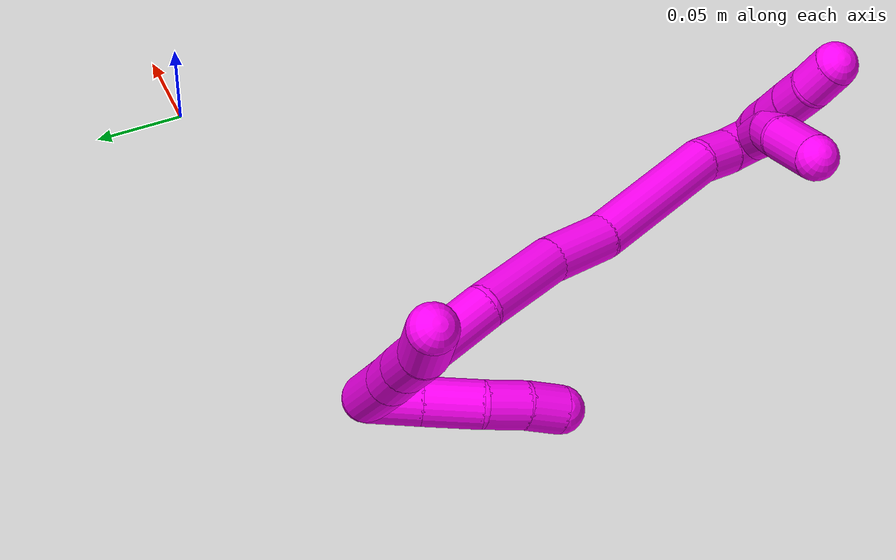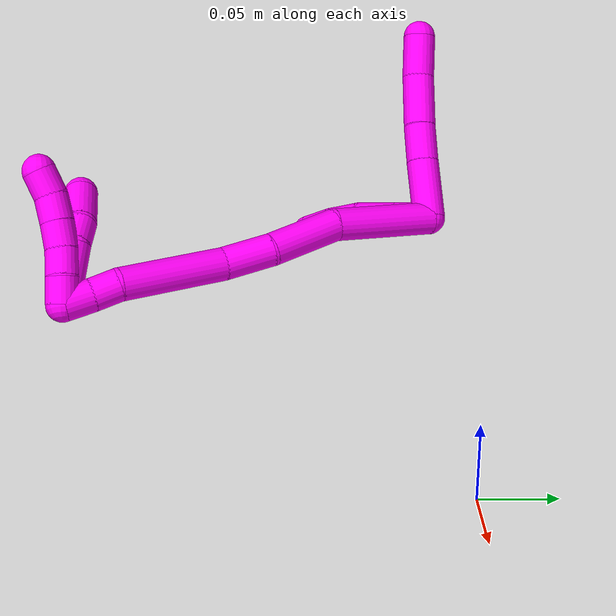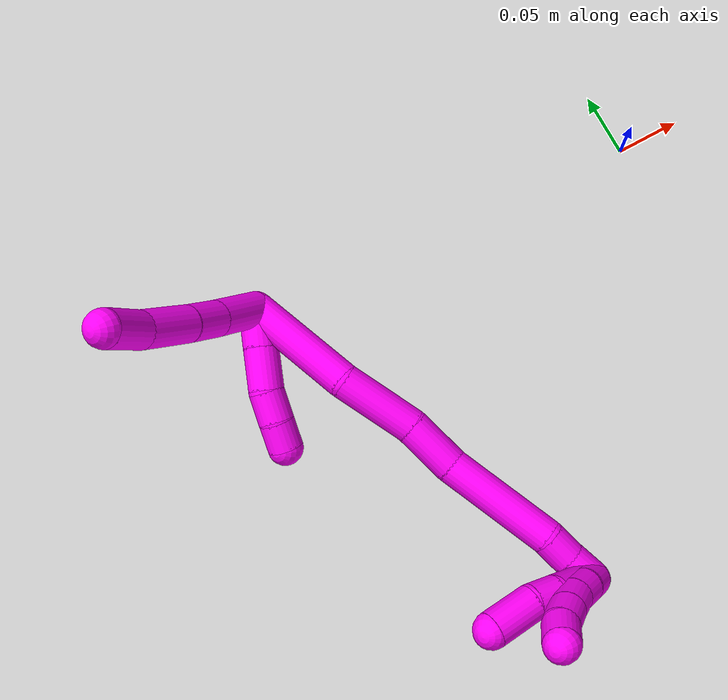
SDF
<sdf version="1.7">
 <world name="default">
  <model name="10">
   <static>0</static>
   <link name="10">
    <collision name="collision-cylinder-e_1_2_8">
     <pose>-0.00017 -0.000464 -0.022891 3.12134 -0.007409 -0.701391</pose>
     <geometry><cylinder><radius>0.0125</radius><length>0.045792</length></cylinder></geometry>
     <surface>
      <friction><ode><mu>1.16</mu><mu2>1.16</mu2><slip1>0</slip1><slip2>0</slip2></ode></friction>
      <contact><ode><kp>1e+06</kp><kd>1</kd><max_vel>0</max_vel><min_depth>0.001</min_depth></ode></contact>
     </surface>
    </collision>
    <visual name="visual-cylinder-e_1_2_8">
     <pose>-0.00017 -0.000464 -0.022891 3.12134 -0.007409 -0.701391</pose>
     <geometry><cylinder><radius>0.0125</radius><length>0.045792</length></cylinder></geometry>
     <material><ambient>1 0 0.964706 1</ambient></material>
    </visual>
    <collision name="collision-cylinder-e_2_8_9">
     <pose>-0.000908 -0.001465 -0.060499 3.10509 -0.03859 -1.62633</pose>
     <geometry><cylinder><radius>0.0125</radius><length>0.029476</length></cylinder></geometry>
     <surface>
      <friction><ode><mu>1.16</mu><mu2>1.16</mu2><slip1>0</slip1><slip2>0</slip2></ode></friction>
      <contact><ode><kp>1e+06</kp><kd>1</kd><max_vel>0</max_vel><min_depth>0.001</min_depth></ode></contact>
     </surface>
    </collision>
    <visual name="visual-cylinder-e_2_8_9">
     <pose>-0.000908 -0.001465 -0.060499 3.10509 -0.03859 -1.62633</pose>
     <geometry><cylinder><radius>0.0125</radius><length>0.029476</length></cylinder></geometry>
     <material><ambient>1 0 0.964706 1</ambient></material>
    </visual>
    <collision name="collision-cylinder-e_3_9_10">
     <pose>-0.003075 -0.001477 -0.095797 -3.11607 -0.077506 2.50565</pose>
     <geometry><cylinder><radius>0.0125</radius><length>0.041299</length></cylinder></geometry>
     <surface>
      <friction><ode><mu>1.16</mu><mu2>1.16</mu2><slip1>0</slip1><slip2>0</slip2></ode></friction>
      <contact><ode><kp>1e+06</kp><kd>1</kd><max_vel>0</max_vel><min_depth>0.001</min_depth></ode></contact>
     </surface>
    </collision>
    <visual name="visual-cylinder-e_3_9_10">
     <pose>-0.003075 -0.001477 -0.095797 -3.11607 -0.077506 2.50565</pose>
     <geometry><cylinder><radius>0.0125</radius><length>0.041299</length></cylinder></geometry>
     <material><ambient>1 0 0.964706 1</ambient></material>
    </visual>
    <collision name="collision-cylinder-e_4_10_6">
     <pose>-0.007487 -0.003242 -0.132696 3.00214 -0.169084 -1.76305</pose>
     <geometry><cylinder><radius>0.0125</radius><length>0.033432</length></cylinder></geometry>
     <surface>
      <friction><ode><mu>1.16</mu><mu2>1.16</mu2><slip1>0</slip1><slip2>0</slip2></ode></friction>
      <contact><ode><kp>1e+06</kp><kd>1</kd><max_vel>0</max_vel><min_depth>0.001</min_depth></ode></contact>
     </surface>
    </collision>
    <visual name="visual-cylinder-e_4_10_6">
     <pose>-0.007487 -0.003242 -0.132696 3.00214 -0.169084 -1.76305</pose>
     <geometry><cylinder><radius>0.0125</radius><length>0.033432</length></cylinder></geometry>
     <material><ambient>1 0 0.964706 1</ambient></material>
    </visual>
    <collision name="collision-cylinder-e_1_2_11">
     <pose>0.013407 0.000556 -0.002393 -2.91313 1.38955 -2.86798</pose>
     <geometry><cylinder><radius>0.0125</radius><length>0.027261</length></cylinder></geometry>
     <surface>
      <friction><ode><mu>1.16</mu><mu2>1.16</mu2><slip1>0</slip1><slip2>0</slip2></ode></friction>
      <contact><ode><kp>1e+06</kp><kd>1</kd><max_vel>0</max_vel><min_depth>0.001</min_depth></ode></contact>
     </surface>
    </collision>
    <visual name="visual-cylinder-e_1_2_11">
     <pose>0.013407 0.000556 -0.002393 -2.91313 1.38955 -2.86798</pose>
     <geometry><cylinder><radius>0.0125</radius><length>0.027261</length></cylinder></geometry>
     <material><ambient>1 0 0.964706 1</ambient></material>
    </visual>
    <collision name="collision-cylinder-e_2_11_12">
     <pose>0.041781 0.001591 -0.007491 -2.96676 1.38931 -2.93199</pose>
     <geometry><cylinder><radius>0.0125</radius><length>0.030432</length></cylinder></geometry>
     <surface>
      <friction><ode><mu>1.16</mu><mu2>1.16</mu2><slip1>0</slip1><slip2>0</slip2></ode></friction>
      <contact><ode><kp>1e+06</kp><kd>1</kd><max_vel>0</max_vel><min_depth>0.001</min_depth></ode></contact>
     </surface>
    </collision>
    <visual name="visual-cylinder-e_2_11_12">
     <pose>0.041781 0.001591 -0.007491 -2.96676 1.38931 -2.93199</pose>
     <geometry><cylinder><radius>0.0125</radius><length>0.030432</length></cylinder></geometry>
     <material><ambient>1 0 0.964706 1</ambient></material>
    </visual>
    <collision name="collision-cylinder-e_3_12_13">
     <pose>0.06781 0.00158 -0.009776 0.862163 1.51267 0.818847</pose>
     <geometry><cylinder><radius>0.0125</radius><length>0.022165</length></cylinder></geometry>
     <surface>
      <friction><ode><mu>1.16</mu><mu2>1.16</mu2><slip1>0</slip1><slip2>0</slip2></ode></friction>
      <contact><ode><kp>1e+06</kp><kd>1</kd><max_vel>0</max_vel><min_depth>0.001</min_depth></ode></contact>
     </surface>
    </collision>
    <visual name="visual-cylinder-e_3_12_13">
     <pose>0.06781 0.00158 -0.009776 0.862163 1.51267 0.818847</pose>
     <geometry><cylinder><radius>0.0125</radius><length>0.022165</length></cylinder></geometry>
     <material><ambient>1 0 0.964706 1</ambient></material>
    </visual>
    <collision name="collision-cylinder-e_4_13_5">
     <pose>0.088821 0.001452 -0.007822 -0.23111 1.41358 -0.197597</pose>
     <geometry><cylinder><radius>0.0125</radius><length>0.020142</length></cylinder></geometry>
     <surface>
      <friction><ode><mu>1.16</mu><mu2>1.16</mu2><slip1>0</slip1><slip2>0</slip2></ode></friction>
      <contact><ode><kp>1e+06</kp><kd>1</kd><max_vel>0</max_vel><min_depth>0.001</min_depth></ode></contact>
     </surface>
    </collision>
    <visual name="visual-cylinder-e_4_13_5">
     <pose>0.088821 0.001452 -0.007822 -0.23111 1.41358 -0.197597</pose>
     <geometry><cylinder><radius>0.0125</radius><length>0.020142</length></cylinder></geometry>
     <material><ambient>1 0 0.964706 1</ambient></material>
    </visual>
    <collision name="collision-cylinder-e_1_2_14">
     <pose>0.031336 -0.025513 0.003611 1.4302 0.88262 0.77859</pose>
     <geometry><cylinder><radius>0.0125</radius><length>0.08114</length></cylinder></geometry>
     <surface>
      <friction><ode><mu>1.16</mu><mu2>1.16</mu2><slip1>0</slip1><slip2>0</slip2></ode></friction>
      <contact><ode><kp>1e+06</kp><kd>1</kd><max_vel>0</max_vel><min_depth>0.001</min_depth></ode></contact>
     </surface>
    </collision>
    <visual name="visual-cylinder-e_1_2_14">
     <pose>0.031336 -0.025513 0.003611 1.4302 0.88262 0.77859</pose>
     <geometry><cylinder><radius>0.0125</radius><length>0.08114</length></cylinder></geometry>
     <material><ambient>1 0 0.964706 1</ambient></material>
    </visual>
    <collision name="collision-cylinder-e_2_14_15">
     <pose>0.083733 -0.066629 0.017168 1.0033 0.849941 0.486565</pose>
     <geometry><cylinder><radius>0.0125</radius><length>0.056069</length></cylinder></geometry>
     <surface>
      <friction><ode><mu>1.16</mu><mu2>1.16</mu2><slip1>0</slip1><slip2>0</slip2></ode></friction>
      <contact><ode><kp>1e+06</kp><kd>1</kd><max_vel>0</max_vel><min_depth>0.001</min_depth></ode></contact>
     </surface>
    </collision>
    <visual name="visual-cylinder-e_2_14_15">
     <pose>0.083733 -0.066629 0.017168 1.0033 0.849941 0.486565</pose>
     <geometry><cylinder><radius>0.0125</radius><length>0.056069</length></cylinder></geometry>
     <material><ambient>1 0 0.964706 1</ambient></material>
    </visual>
    <collision name="collision-cylinder-e_3_15_16">
     <pose>0.121178 -0.090729 0.031823 1.0647 1.03559 0.647509</pose>
     <geometry><cylinder><radius>0.0125</radius><length>0.038096</length></cylinder></geometry>
     <surface>
      <friction><ode><mu>1.16</mu><mu2>1.16</mu2><slip1>0</slip1><slip2>0</slip2></ode></friction>
      <contact><ode><kp>1e+06</kp><kd>1</kd><max_vel>0</max_vel><min_depth>0.001</min_depth></ode></contact>
     </surface>
    </collision>
    <visual name="visual-cylinder-e_3_15_16">
     <pose>0.121178 -0.090729 0.031823 1.0647 1.03559 0.647509</pose>
     <geometry><cylinder><radius>0.0125</radius><length>0.038096</length></cylinder></geometry>
     <material><ambient>1 0 0.964706 1</ambient></material>
    </visual>
    <collision name="collision-cylinder-e_4_16_17">
     <pose>0.168847 -0.12422 0.044628 1.25757 0.872264 0.653589</pose>
     <geometry><cylinder><radius>0.0125</radius><length>0.081705</length></cylinder></geometry>
     <surface>
      <friction><ode><mu>1.16</mu><mu2>1.16</mu2><slip1>0</slip1><slip2>0</slip2></ode></friction>
      <contact><ode><kp>1e+06</kp><kd>1</kd><max_vel>0</max_vel><min_depth>0.001</min_depth></ode></contact>
     </surface>
    </collision>
    <visual name="visual-cylinder-e_4_16_17">
     <pose>0.168847 -0.12422 0.044628 1.25757 0.872264 0.653589</pose>
     <geometry><cylinder><radius>0.0125</radius><length>0.081705</length></cylinder></geometry>
     <material><ambient>1 0 0.964706 1</ambient></material>
    </visual>
    <collision name="collision-cylinder-e_5_17_18">
     <pose>0.209049 -0.153285 0.056039 0.887279 1.03859 0.530512</pose>
     <geometry><cylinder><radius>0.0125</radius><length>0.020696</length></cylinder></geometry>
     <surface>
      <friction><ode><mu>1.16</mu><mu2>1.16</mu2><slip1>0</slip1><slip2>0</slip2></ode></friction>
      <contact><ode><kp>1e+06</kp><kd>1</kd><max_vel>0</max_vel><min_depth>0.001</min_depth></ode></contact>
     </surface>
    </collision>
    <visual name="visual-cylinder-e_5_17_18">
     <pose>0.209049 -0.153285 0.056039 0.887279 1.03859 0.530512</pose>
     <geometry><cylinder><radius>0.0125</radius><length>0.020696</length></cylinder></geometry>
     <material><ambient>1 0 0.964706 1</ambient></material>
    </visual>
    <collision name="collision-cylinder-e_6_18_1">
     <pose>0.227193 -0.162692 0.062618 1.02193 0.975151 0.577936</pose>
     <geometry><cylinder><radius>0.0125</radius><length>0.022294</length></cylinder></geometry>
     <surface>
      <friction><ode><mu>1.16</mu><mu2>1.16</mu2><slip1>0</slip1><slip2>0</slip2></ode></friction>
      <contact><ode><kp>1e+06</kp><kd>1</kd><max_vel>0</max_vel><min_depth>0.001</min_depth></ode></contact>
     </surface>
    </collision>
    <visual name="visual-cylinder-e_6_18_1">
     <pose>0.227193 -0.162692 0.062618 1.02193 0.975151 0.577936</pose>
     <geometry><cylinder><radius>0.0125</radius><length>0.022294</length></cylinder></geometry>
     <material><ambient>1 0 0.964706 1</ambient></material>
    </visual>
    <collision name="collision-cylinder-e_1_1_19">
     <pose>0.232713 -0.164208 0.043389 -2.97341 -0.161089 1.52754</pose>
     <geometry><cylinder><radius>0.0125</radius><length>0.046226</length></cylinder></geometry>
     <surface>
      <friction><ode><mu>1.16</mu><mu2>1.16</mu2><slip1>0</slip1><slip2>0</slip2></ode></friction>
      <contact><ode><kp>1e+06</kp><kd>1</kd><max_vel>0</max_vel><min_depth>0.001</min_depth></ode></contact>
     </surface>
    </collision>
    <visual name="visual-cylinder-e_1_1_19">
     <pose>0.232713 -0.164208 0.043389 -2.97341 -0.161089 1.52754</pose>
     <geometry><cylinder><radius>0.0125</radius><length>0.046226</length></cylinder></geometry>
     <material><ambient>1 0 0.964706 1</ambient></material>
    </visual>
    <collision name="collision-cylinder-e_2_19_20">
     <pose>0.22827 -0.155917 0.01191 -2.67985 -0.073115 0.308707</pose>
     <geometry><cylinder><radius>0.0125</radius><length>0.020131</length></cylinder></geometry>
     <surface>
      <friction><ode><mu>1.16</mu><mu2>1.16</mu2><slip1>0</slip1><slip2>0</slip2></ode></friction>
      <contact><ode><kp>1e+06</kp><kd>1</kd><max_vel>0</max_vel><min_depth>0.001</min_depth></ode></contact>
     </surface>
    </collision>
    <visual name="visual-cylinder-e_2_19_20">
     <pose>0.22827 -0.155917 0.01191 -2.67985 -0.073115 0.308707</pose>
     <geometry><cylinder><radius>0.0125</radius><length>0.020131</length></cylinder></geometry>
     <material><ambient>1 0 0.964706 1</ambient></material>
    </visual>
    <collision name="collision-cylinder-e_3_20_4">
     <pose>0.230422 -0.142877 -0.011263 -2.59825 0.1725 -0.601939</pose>
     <geometry><cylinder><radius>0.0125</radius><length>0.033643</length></cylinder></geometry>
     <surface>
      <friction><ode><mu>1.16</mu><mu2>1.16</mu2><slip1>0</slip1><slip2>0</slip2></ode></friction>
      <contact><ode><kp>1e+06</kp><kd>1</kd><max_vel>0</max_vel><min_depth>0.001</min_depth></ode></contact>
     </surface>
    </collision>
    <visual name="visual-cylinder-e_3_20_4">
     <pose>0.230422 -0.142877 -0.011263 -2.59825 0.1725 -0.601939</pose>
     <geometry><cylinder><radius>0.0125</radius><length>0.033643</length></cylinder></geometry>
     <material><ambient>1 0 0.964706 1</ambient></material>
    </visual>
    <collision name="collision-cylinder-e_1_1_21">
     <pose>0.235311 -0.169321 0.056027 3.011 -0.111097 -1.4094</pose>
     <geometry><cylinder><radius>0.0125</radius><length>0.02</length></cylinder></geometry>
     <surface>
      <friction><ode><mu>1.16</mu><mu2>1.16</mu2><slip1>0</slip1><slip2>0</slip2></ode></friction>
      <contact><ode><kp>1e+06</kp><kd>1</kd><max_vel>0</max_vel><min_depth>0.001</min_depth></ode></contact>
     </surface>
    </collision>
    <visual name="visual-cylinder-e_1_1_21">
     <pose>0.235311 -0.169321 0.056027 3.011 -0.111097 -1.4094</pose>
     <geometry><cylinder><radius>0.0125</radius><length>0.02</length></cylinder></geometry>
     <material><ambient>1 0 0.964706 1</ambient></material>
    </visual>
    <collision name="collision-cylinder-e_2_21_22">
     <pose>0.233847 -0.170726 0.03618 3.13052 -0.035589 -2.53836</pose>
     <geometry><cylinder><radius>0.0125</radius><length>0.02</length></cylinder></geometry>
     <surface>
      <friction><ode><mu>1.16</mu><mu2>1.16</mu2><slip1>0</slip1><slip2>0</slip2></ode></friction>
      <contact><ode><kp>1e+06</kp><kd>1</kd><max_vel>0</max_vel><min_depth>0.001</min_depth></ode></contact>
     </surface>
    </collision>
    <visual name="visual-cylinder-e_2_21_22">
     <pose>0.233847 -0.170726 0.03618 3.13052 -0.035589 -2.53836</pose>
     <geometry><cylinder><radius>0.0125</radius><length>0.02</length></cylinder></geometry>
     <material><ambient>1 0 0.964706 1</ambient></material>
    </visual>
    <collision name="collision-cylinder-e_3_22_23">
     <pose>0.234275 -0.172162 0.016307 3.00824 0.078528 1.06358</pose>
     <geometry><cylinder><radius>0.0125</radius><length>0.02</length></cylinder></geometry>
     <surface>
      <friction><ode><mu>1.16</mu><mu2>1.16</mu2><slip1>0</slip1><slip2>0</slip2></ode></friction>
      <contact><ode><kp>1e+06</kp><kd>1</kd><max_vel>0</max_vel><min_depth>0.001</min_depth></ode></contact>
     </surface>
    </collision>
    <visual name="visual-cylinder-e_3_22_23">
     <pose>0.234275 -0.172162 0.016307 3.00824 0.078528 1.06358</pose>
     <geometry><cylinder><radius>0.0125</radius><length>0.02</length></cylinder></geometry>
     <material><ambient>1 0 0.964706 1</ambient></material>
    </visual>
    <collision name="collision-cylinder-e_4_23_24">
     <pose>0.236344 -0.17494 -0.003384 2.99461 0.128763 1.4384</pose>
     <geometry><cylinder><radius>0.0125</radius><length>0.02</length></cylinder></geometry>
     <surface>
      <friction><ode><mu>1.16</mu><mu2>1.16</mu2><slip1>0</slip1><slip2>0</slip2></ode></friction>
      <contact><ode><kp>1e+06</kp><kd>1</kd><max_vel>0</max_vel><min_depth>0.001</min_depth></ode></contact>
     </surface>
    </collision>
    <visual name="visual-cylinder-e_4_23_24">
     <pose>0.236344 -0.17494 -0.003384 2.99461 0.128763 1.4384</pose>
     <geometry><cylinder><radius>0.0125</radius><length>0.02</length></cylinder></geometry>
     <material><ambient>1 0 0.964706 1</ambient></material>
    </visual>
    <collision name="collision-cylinder-e_5_24_3">
     <pose>0.240284 -0.1798 -0.022213 2.78037 0.268789 1.27473</pose>
     <geometry><cylinder><radius>0.0125</radius><length>0.02</length></cylinder></geometry>
     <surface>
      <friction><ode><mu>1.16</mu><mu2>1.16</mu2><slip1>0</slip1><slip2>0</slip2></ode></friction>
      <contact><ode><kp>1e+06</kp><kd>1</kd><max_vel>0</max_vel><min_depth>0.001</min_depth></ode></contact>
     </surface>
    </collision>
    <visual name="visual-cylinder-e_5_24_3">
     <pose>0.240284 -0.1798 -0.022213 2.78037 0.268789 1.27473</pose>
     <geometry><cylinder><radius>0.0125</radius><length>0.02</length></cylinder></geometry>
     <material><ambient>1 0 0.964706 1</ambient></material>
    </visual>
    <collision name="collision-sphere-3">
     <pose>0.242939 -0.183207 -0.031232 0 -0 0</pose>
     <geometry><sphere><radius>0.0125</radius></sphere></geometry>
     <surface>
      <friction><ode><mu>1.16</mu><mu2>1.16</mu2><slip1>0</slip1><slip2>0</slip2></ode></friction>
      <contact><ode><kp>1e+06</kp><kd>1</kd><max_vel>0</max_vel><min_depth>0.001</min_depth></ode></contact>
     </surface>
    </collision>
    <visual name="visual-sphere-3">
     <pose>0.242939 -0.183207 -0.031232 0 -0 0</pose>
     <geometry><sphere><radius>0.0125</radius></sphere></geometry>
     <material><ambient>1 0 0.964706 1</ambient></material>
    </visual>
    <collision name="collision-sphere-24">
     <pose>0.237628 -0.176393 -0.013194 0 -0 0</pose>
     <geometry><sphere><radius>0.0125</radius></sphere></geometry>
     <surface>
      <friction><ode><mu>1.16</mu><mu2>1.16</mu2><slip1>0</slip1><slip2>0</slip2></ode></friction>
      <contact><ode><kp>1e+06</kp><kd>1</kd><max_vel>0</max_vel><min_depth>0.001</min_depth></ode></contact>
     </surface>
    </collision>
    <visual name="visual-sphere-24">
     <pose>0.237628 -0.176393 -0.013194 0 -0 0</pose>
     <geometry><sphere><radius>0.0125</radius></sphere></geometry>
     <material><ambient>1 0 0.964706 1</ambient></material>
    </visual>
    <collision name="collision-sphere-23">
     <pose>0.23506 -0.173488 0.006426 0 -0 0</pose>
     <geometry><sphere><radius>0.0125</radius></sphere></geometry>
     <surface>
      <friction><ode><mu>1.16</mu><mu2>1.16</mu2><slip1>0</slip1><slip2>0</slip2></ode></friction>
      <contact><ode><kp>1e+06</kp><kd>1</kd><max_vel>0</max_vel><min_depth>0.001</min_depth></ode></contact>
     </surface>
    </collision>
    <visual name="visual-sphere-23">
     <pose>0.23506 -0.173488 0.006426 0 -0 0</pose>
     <geometry><sphere><radius>0.0125</radius></sphere></geometry>
     <material><ambient>1 0 0.964706 1</ambient></material>
    </visual>
    <collision name="collision-sphere-22">
     <pose>0.233491 -0.170837 0.026187 0 -0 0</pose>
     <geometry><sphere><radius>0.0125</radius></sphere></geometry>
     <surface>
      <friction><ode><mu>1.16</mu><mu2>1.16</mu2><slip1>0</slip1><slip2>0</slip2></ode></friction>
      <contact><ode><kp>1e+06</kp><kd>1</kd><max_vel>0</max_vel><min_depth>0.001</min_depth></ode></contact>
     </surface>
    </collision>
    <visual name="visual-sphere-22">
     <pose>0.233491 -0.170837 0.026187 0 -0 0</pose>
     <geometry><sphere><radius>0.0125</radius></sphere></geometry>
     <material><ambient>1 0 0.964706 1</ambient></material>
    </visual>
    <collision name="collision-sphere-21">
     <pose>0.234203 -0.170616 0.046174 0 -0 0</pose>
     <geometry><sphere><radius>0.0125</radius></sphere></geometry>
     <surface>
      <friction><ode><mu>1.16</mu><mu2>1.16</mu2><slip1>0</slip1><slip2>0</slip2></ode></friction>
      <contact><ode><kp>1e+06</kp><kd>1</kd><max_vel>0</max_vel><min_depth>0.001</min_depth></ode></contact>
     </surface>
    </collision>
    <visual name="visual-sphere-21">
     <pose>0.234203 -0.170616 0.046174 0 -0 0</pose>
     <geometry><sphere><radius>0.0125</radius></sphere></geometry>
     <material><ambient>1 0 0.964706 1</ambient></material>
    </visual>
    <collision name="collision-sphere-4">
     <pose>0.23331 -0.13431 -0.025448 0 -0 0</pose>
     <geometry><sphere><radius>0.0125</radius></sphere></geometry>
     <surface>
      <friction><ode><mu>1.16</mu><mu2>1.16</mu2><slip1>0</slip1><slip2>0</slip2></ode></friction>
      <contact><ode><kp>1e+06</kp><kd>1</kd><max_vel>0</max_vel><min_depth>0.001</min_depth></ode></contact>
     </surface>
    </collision>
    <visual name="visual-sphere-4">
     <pose>0.23331 -0.13431 -0.025448 0 -0 0</pose>
     <geometry><sphere><radius>0.0125</radius></sphere></geometry>
     <material><ambient>1 0 0.964706 1</ambient></material>
    </visual>
    <collision name="collision-sphere-20">
     <pose>0.227535 -0.151445 0.002922 0 -0 0</pose>
     <geometry><sphere><radius>0.0125</radius></sphere></geometry>
     <surface>
      <friction><ode><mu>1.16</mu><mu2>1.16</mu2><slip1>0</slip1><slip2>0</slip2></ode></friction>
      <contact><ode><kp>1e+06</kp><kd>1</kd><max_vel>0</max_vel><min_depth>0.001</min_depth></ode></contact>
     </surface>
    </collision>
    <visual name="visual-sphere-20">
     <pose>0.227535 -0.151445 0.002922 0 -0 0</pose>
     <geometry><sphere><radius>0.0125</radius></sphere></geometry>
     <material><ambient>1 0 0.964706 1</ambient></material>
    </visual>
    <collision name="collision-sphere-11">
     <pose>0.026814 0.001113 -0.004786 0 -0 0</pose>
     <geometry><sphere><radius>0.0125</radius></sphere></geometry>
     <surface>
      <friction><ode><mu>1.16</mu><mu2>1.16</mu2><slip1>0</slip1><slip2>0</slip2></ode></friction>
      <contact><ode><kp>1e+06</kp><kd>1</kd><max_vel>0</max_vel><min_depth>0.001</min_depth></ode></contact>
     </surface>
    </collision>
    <visual name="visual-sphere-11">
     <pose>0.026814 0.001113 -0.004786 0 -0 0</pose>
     <geometry><sphere><radius>0.0125</radius></sphere></geometry>
     <material><ambient>1 0 0.964706 1</ambient></material>
    </visual>
    <collision name="collision-sphere-6">
     <pose>-0.0103 -0.005532 -0.149014 0 -0 0</pose>
     <geometry><sphere><radius>0.0125</radius></sphere></geometry>
     <surface>
      <friction><ode><mu>1.16</mu><mu2>1.16</mu2><slip1>0</slip1><slip2>0</slip2></ode></friction>
      <contact><ode><kp>1e+06</kp><kd>1</kd><max_vel>0</max_vel><min_depth>0.001</min_depth></ode></contact>
     </surface>
    </collision>
    <visual name="visual-sphere-6">
     <pose>-0.0103 -0.005532 -0.149014 0 -0 0</pose>
     <geometry><sphere><radius>0.0125</radius></sphere></geometry>
     <material><ambient>1 0 0.964706 1</ambient></material>
    </visual>
    <collision name="collision-sphere-10">
     <pose>-0.004674 -0.000952 -0.116378 0 -0 0</pose>
     <geometry><sphere><radius>0.0125</radius></sphere></geometry>
     <surface>
      <friction><ode><mu>1.16</mu><mu2>1.16</mu2><slip1>0</slip1><slip2>0</slip2></ode></friction>
      <contact><ode><kp>1e+06</kp><kd>1</kd><max_vel>0</max_vel><min_depth>0.001</min_depth></ode></contact>
     </surface>
    </collision>
    <visual name="visual-sphere-10">
     <pose>-0.004674 -0.000952 -0.116378 0 -0 0</pose>
     <geometry><sphere><radius>0.0125</radius></sphere></geometry>
     <material><ambient>1 0 0.964706 1</ambient></material>
    </visual>
    <collision name="collision-sphere-9">
     <pose>-0.001476 -0.002002 -0.075216 0 -0 0</pose>
     <geometry><sphere><radius>0.0125</radius></sphere></geometry>
     <surface>
      <friction><ode><mu>1.16</mu><mu2>1.16</mu2><slip1>0</slip1><slip2>0</slip2></ode></friction>
      <contact><ode><kp>1e+06</kp><kd>1</kd><max_vel>0</max_vel><min_depth>0.001</min_depth></ode></contact>
     </surface>
    </collision>
    <visual name="visual-sphere-9">
     <pose>-0.001476 -0.002002 -0.075216 0 -0 0</pose>
     <geometry><sphere><radius>0.0125</radius></sphere></geometry>
     <material><ambient>1 0 0.964706 1</ambient></material>
    </visual>
    <collision name="collision-sphere-2">
     <geometry><sphere><radius>0.0125</radius></sphere></geometry>
     <surface>
      <friction><ode><mu>1.16</mu><mu2>1.16</mu2><slip1>0</slip1><slip2>0</slip2></ode></friction>
      <contact><ode><kp>1e+06</kp><kd>1</kd><max_vel>0</max_vel><min_depth>0.001</min_depth></ode></contact>
     </surface>
    </collision>
    <visual name="visual-sphere-2">
     <geometry><sphere><radius>0.0125</radius></sphere></geometry>
     <material><ambient>1 0 0.964706 1</ambient></material>
    </visual>
    <collision name="collision-sphere-19">
     <pose>0.229006 -0.16039 0.020897 0 -0 0</pose>
     <geometry><sphere><radius>0.0125</radius></sphere></geometry>
     <surface>
      <friction><ode><mu>1.16</mu><mu2>1.16</mu2><slip1>0</slip1><slip2>0</slip2></ode></friction>
      <contact><ode><kp>1e+06</kp><kd>1</kd><max_vel>0</max_vel><min_depth>0.001</min_depth></ode></contact>
     </surface>
    </collision>
    <visual name="visual-sphere-19">
     <pose>0.229006 -0.16039 0.020897 0 -0 0</pose>
     <geometry><sphere><radius>0.0125</radius></sphere></geometry>
     <material><ambient>1 0 0.964706 1</ambient></material>
    </visual>
    <collision name="collision-sphere-8">
     <pose>-0.000339 -0.000927 -0.045782 0 -0 0</pose>
     <geometry><sphere><radius>0.0125</radius></sphere></geometry>
     <surface>
      <friction><ode><mu>1.16</mu><mu2>1.16</mu2><slip1>0</slip1><slip2>0</slip2></ode></friction>
      <contact><ode><kp>1e+06</kp><kd>1</kd><max_vel>0</max_vel><min_depth>0.001</min_depth></ode></contact>
     </surface>
    </collision>
    <visual name="visual-sphere-8">
     <pose>-0.000339 -0.000927 -0.045782 0 -0 0</pose>
     <geometry><sphere><radius>0.0125</radius></sphere></geometry>
     <material><ambient>1 0 0.964706 1</ambient></material>
    </visual>
    <collision name="collision-sphere-12">
     <pose>0.056747 0.002068 -0.010195 0 -0 0</pose>
     <geometry><sphere><radius>0.0125</radius></sphere></geometry>
     <surface>
      <friction><ode><mu>1.16</mu><mu2>1.16</mu2><slip1>0</slip1><slip2>0</slip2></ode></friction>
      <contact><ode><kp>1e+06</kp><kd>1</kd><max_vel>0</max_vel><min_depth>0.001</min_depth></ode></contact>
     </surface>
    </collision>
    <visual name="visual-sphere-12">
     <pose>0.056747 0.002068 -0.010195 0 -0 0</pose>
     <geometry><sphere><radius>0.0125</radius></sphere></geometry>
     <material><ambient>1 0 0.964706 1</ambient></material>
    </visual>
    <collision name="collision-sphere-13">
     <pose>0.078874 0.001091 -0.009357 0 -0 0</pose>
     <geometry><sphere><radius>0.0125</radius></sphere></geometry>
     <surface>
      <friction><ode><mu>1.16</mu><mu2>1.16</mu2><slip1>0</slip1><slip2>0</slip2></ode></friction>
      <contact><ode><kp>1e+06</kp><kd>1</kd><max_vel>0</max_vel><min_depth>0.001</min_depth></ode></contact>
     </surface>
    </collision>
    <visual name="visual-sphere-13">
     <pose>0.078874 0.001091 -0.009357 0 -0 0</pose>
     <geometry><sphere><radius>0.0125</radius></sphere></geometry>
     <material><ambient>1 0 0.964706 1</ambient></material>
    </visual>
    <collision name="collision-sphere-5">
     <pose>0.098768 0.001813 -0.006288 0 -0 0</pose>
     <geometry><sphere><radius>0.0125</radius></sphere></geometry>
     <surface>
      <friction><ode><mu>1.16</mu><mu2>1.16</mu2><slip1>0</slip1><slip2>0</slip2></ode></friction>
      <contact><ode><kp>1e+06</kp><kd>1</kd><max_vel>0</max_vel><min_depth>0.001</min_depth></ode></contact>
     </surface>
    </collision>
    <visual name="visual-sphere-5">
     <pose>0.098768 0.001813 -0.006288 0 -0 0</pose>
     <geometry><sphere><radius>0.0125</radius></sphere></geometry>
     <material><ambient>1 0 0.964706 1</ambient></material>
    </visual>
    <collision name="collision-sphere-14">
     <pose>0.062673 -0.051026 0.007222 0 -0 0</pose>
     <geometry><sphere><radius>0.0125</radius></sphere></geometry>
     <surface>
      <friction><ode><mu>1.16</mu><mu2>1.16</mu2><slip1>0</slip1><slip2>0</slip2></ode></friction>
      <contact><ode><kp>1e+06</kp><kd>1</kd><max_vel>0</max_vel><min_depth>0.001</min_depth></ode></contact>
     </surface>
    </collision>
    <visual name="visual-sphere-14">
     <pose>0.062673 -0.051026 0.007222 0 -0 0</pose>
     <geometry><sphere><radius>0.0125</radius></sphere></geometry>
     <material><ambient>1 0 0.964706 1</ambient></material>
    </visual>
    <collision name="collision-sphere-15">
     <pose>0.104794 -0.082232 0.027114 0 -0 0</pose>
     <geometry><sphere><radius>0.0125</radius></sphere></geometry>
     <surface>
      <friction><ode><mu>1.16</mu><mu2>1.16</mu2><slip1>0</slip1><slip2>0</slip2></ode></friction>
      <contact><ode><kp>1e+06</kp><kd>1</kd><max_vel>0</max_vel><min_depth>0.001</min_depth></ode></contact>
     </surface>
    </collision>
    <visual name="visual-sphere-15">
     <pose>0.104794 -0.082232 0.027114 0 -0 0</pose>
     <geometry><sphere><radius>0.0125</radius></sphere></geometry>
     <material><ambient>1 0 0.964706 1</ambient></material>
    </visual>
    <collision name="collision-sphere-16">
     <pose>0.137563 -0.099226 0.036533 0 -0 0</pose>
     <geometry><sphere><radius>0.0125</radius></sphere></geometry>
     <surface>
      <friction><ode><mu>1.16</mu><mu2>1.16</mu2><slip1>0</slip1><slip2>0</slip2></ode></friction>
      <contact><ode><kp>1e+06</kp><kd>1</kd><max_vel>0</max_vel><min_depth>0.001</min_depth></ode></contact>
     </surface>
    </collision>
    <visual name="visual-sphere-16">
     <pose>0.137563 -0.099226 0.036533 0 -0 0</pose>
     <geometry><sphere><radius>0.0125</radius></sphere></geometry>
     <material><ambient>1 0 0.964706 1</ambient></material>
    </visual>
    <collision name="collision-sphere-17">
     <pose>0.200132 -0.149214 0.052723 0 -0 0</pose>
     <geometry><sphere><radius>0.0125</radius></sphere></geometry>
     <surface>
      <friction><ode><mu>1.16</mu><mu2>1.16</mu2><slip1>0</slip1><slip2>0</slip2></ode></friction>
      <contact><ode><kp>1e+06</kp><kd>1</kd><max_vel>0</max_vel><min_depth>0.001</min_depth></ode></contact>
     </surface>
    </collision>
    <visual name="visual-sphere-17">
     <pose>0.200132 -0.149214 0.052723 0 -0 0</pose>
     <geometry><sphere><radius>0.0125</radius></sphere></geometry>
     <material><ambient>1 0 0.964706 1</ambient></material>
    </visual>
    <collision name="collision-sphere-18">
     <pose>0.217965 -0.157356 0.059355 0 -0 0</pose>
     <geometry><sphere><radius>0.0125</radius></sphere></geometry>
     <surface>
      <friction><ode><mu>1.16</mu><mu2>1.16</mu2><slip1>0</slip1><slip2>0</slip2></ode></friction>
      <contact><ode><kp>1e+06</kp><kd>1</kd><max_vel>0</max_vel><min_depth>0.001</min_depth></ode></contact>
     </surface>
    </collision>
    <visual name="visual-sphere-18">
     <pose>0.217965 -0.157356 0.059355 0 -0 0</pose>
     <geometry><sphere><radius>0.0125</radius></sphere></geometry>
     <material><ambient>1 0 0.964706 1</ambient></material>
    </visual>
    <collision name="collision-sphere-1">
     <pose>0.23642 -0.168027 0.065881 0 -0 0</pose>
     <geometry><sphere><radius>0.0125</radius></sphere></geometry>
     <surface>
      <friction><ode><mu>1.16</mu><mu2>1.16</mu2><slip1>0</slip1><slip2>0</slip2></ode></friction>
      <contact><ode><kp>1e+06</kp><kd>1</kd><max_vel>0</max_vel><min_depth>0.001</min_depth></ode></contact>
     </surface>
    </collision>
    <visual name="visual-sphere-1">
     <pose>0.23642 -0.168027 0.065881 0 -0 0</pose>
     <geometry><sphere><radius>0.0125</radius></sphere></geometry>
     <material><ambient>1 0 0.964706 1</ambient></material>
    </visual>
    <inertial>
     <pose>0.115019 -0.078923 0.000404 0 -0 0</pose>
     <mass>0.75</mass>
     <inertia>
      <ixx>0.00014</ixx>
      <ixy>0</ixy>
      <ixz>0</ixz>
      <iyy>0.000126</iyy>
      <iyz>0</iyz>
      <izz>-5.4e-05</izz>
     </inertia>
    </inertial>
   </link>
   <pose>-0.306315 0.003435 0.0727 -2.56329 0.251265 -1.80853</pose>
  </model>
 </world>
</sdf>
